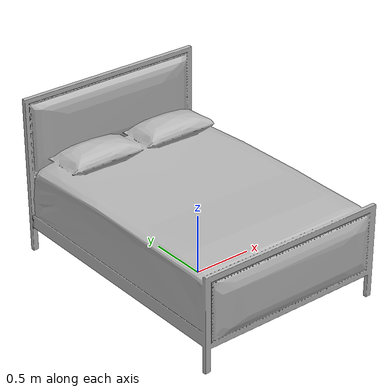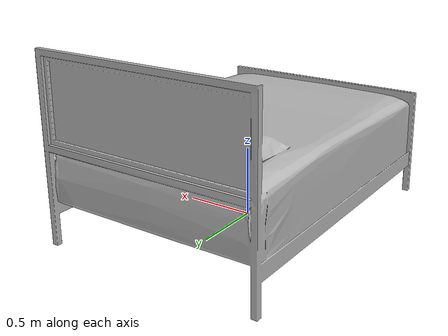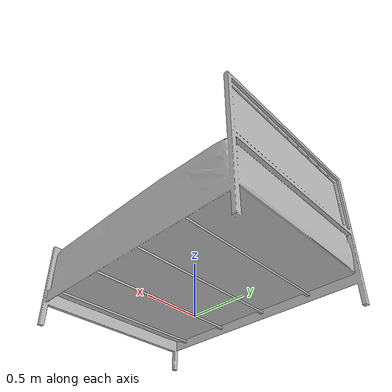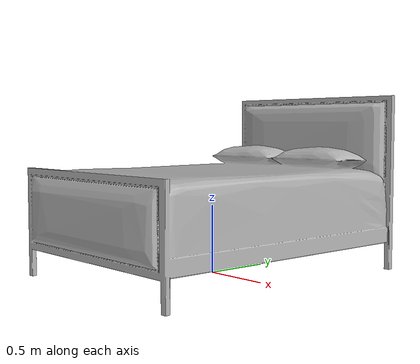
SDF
<sdf version="1.6">
	<model name="Headboards_Occ57434fb9f0_lod0">
		<link name="main_link">
			<visual name="visual_RootNode">
				<geometry>
					<mesh>
						<uri>model://Headboards_Occ57434fb9f0_lod0/meshes/visual_RootNode.dae</uri>
					</mesh>
				</geometry>
			</visual>
			<collision name="collision_RootNode_lod0_0">
				<geometry>
					<mesh>
						<uri>model://Headboards_Occ57434fb9f0_lod0/meshes/collision_RootNode_lod0_0.dae</uri>
					</mesh>
				</geometry>
			</collision>
		</link>
	</model>
</sdf>
